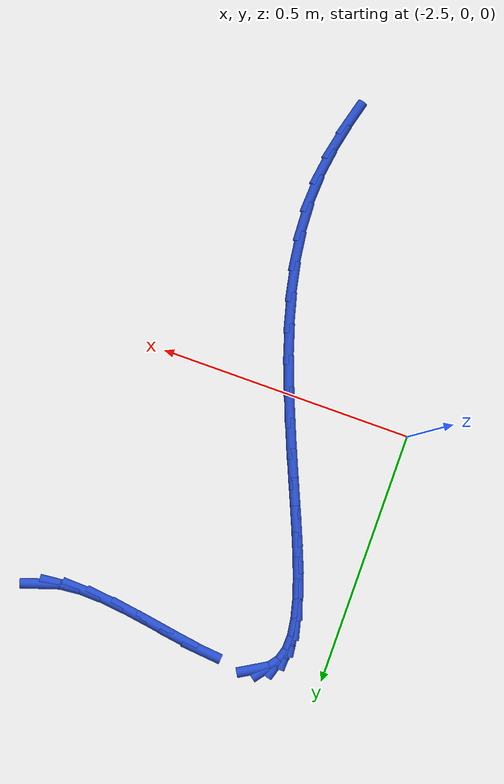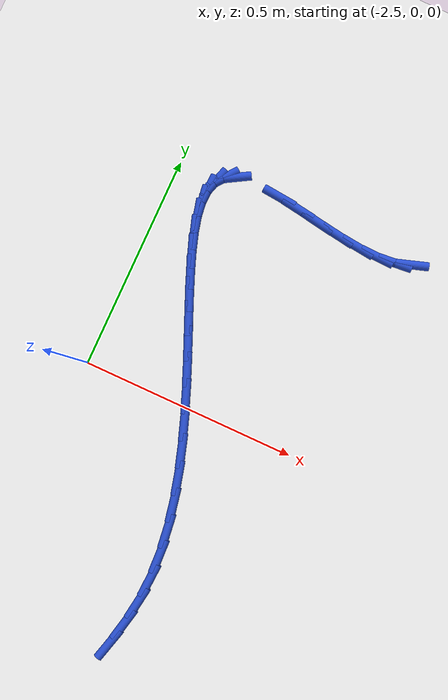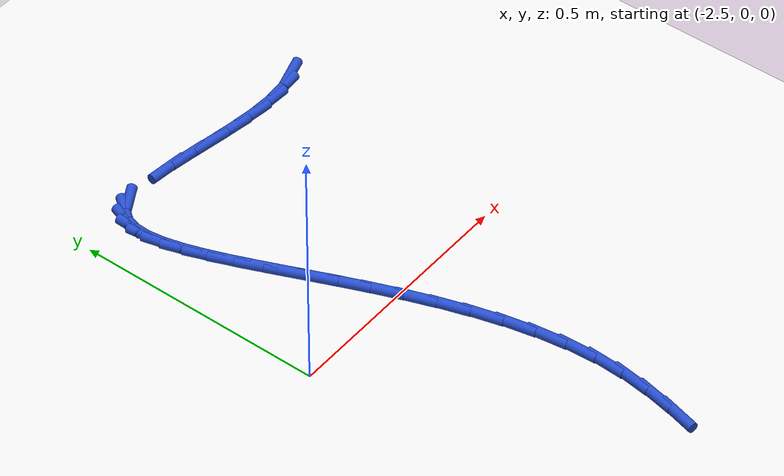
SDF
<sdf version="1.6">
 <world name="default">
  <model name="ground_plane">
   <static>1</static>
   <link name="link">
    <collision name="collision">
     <geometry><plane><normal>0 0 1</normal><size>100 100</size></plane></geometry>
     <surface><friction><ode><mu>100</mu><mu2>50</mu2></ode></friction></surface>
    </collision>
    <visual name="visual">
     <cast_shadows>0</cast_shadows>
     <geometry><plane><normal>0 0 1</normal><size>100 100</size></plane></geometry>
     <material>
      <script><uri>file://media/materials/scripts/gazebo.material</uri><name>Gazebo/WhiteGlow</name></script>
     </material>
    </visual>
   </link>
  </model>
  <model name="line">
   <link name="link_78">
    <pose>-1.9295693842121229 0.5047323110398326 0.01 0 1.57 0.31707817423236845</pose>
    <collision name="collision">
     <geometry><cylinder><radius>0.01</radius><length>0.08</length></cylinder></geometry>
    </collision>
    <visual name="visual">
     <material>
      <script><name>Gazebo/Blue</name><uri>file://media/materials/scripts/gazebo.material</uri></script>
     </material>
     <geometry><cylinder><radius>0.01</radius><length>0.08</length></cylinder></geometry>
    </visual>
   </link>
   <link name="link_79">
    <pose>-1.9646644216286684 0.4932158802956705 0.01 0 1.57 0.09384033132209492</pose>
    <collision name="collision">
     <geometry><cylinder><radius>0.01</radius><length>0.08</length></cylinder></geometry>
    </collision>
    <visual name="visual">
     <material>
      <script><name>Gazebo/Blue</name><uri>file://media/materials/scripts/gazebo.material</uri></script>
     </material>
     <geometry><cylinder><radius>0.01</radius><length>0.08</length></cylinder></geometry>
    </visual>
   </link>
   <link name="link_80">
    <pose>-2.0074501035096977 0.4891890306305653 0.01 0 1.57 -0.035440228475961795</pose>
    <collision name="collision">
     <geometry><cylinder><radius>0.01</radius><length>0.08</length></cylinder></geometry>
    </collision>
    <visual name="visual">
     <material>
      <script><name>Gazebo/Blue</name><uri>file://media/materials/scripts/gazebo.material</uri></script>
     </material>
     <geometry><cylinder><radius>0.01</radius><length>0.08</length></cylinder></geometry>
    </visual>
   </link>
   <link name="link_81">
    <pose>-2.0558226578307153 0.49090408310870315 0.01 0 1.57 -0.10965772234672923</pose>
    <collision name="collision">
     <geometry><cylinder><radius>0.01</radius><length>0.08</length></cylinder></geometry>
    </collision>
    <visual name="visual">
     <material>
      <script><name>Gazebo/Blue</name><uri>file://media/materials/scripts/gazebo.material</uri></script>
     </material>
     <geometry><cylinder><radius>0.01</radius><length>0.08</length></cylinder></geometry>
    </visual>
   </link>
   <link name="link_82">
    <pose>-2.1076783125672223 0.49661335879427004 0.01 0 1.57 -0.1483492825743426</pose>
    <collision name="collision">
     <geometry><cylinder><radius>0.01</radius><length>0.08</length></cylinder></geometry>
    </collision>
    <visual name="visual">
     <material>
      <script><name>Gazebo/Blue</name><uri>file://media/materials/scripts/gazebo.material</uri></script>
     </material>
     <geometry><cylinder><radius>0.01</radius><length>0.08</length></cylinder></geometry>
    </visual>
   </link>
   <link name="link_83">
    <pose>-2.1609132956947215 0.5045691787514519 0.01 0 1.57 -0.15963921540732678</pose>
    <collision name="collision">
     <geometry><cylinder><radius>0.01</radius><length>0.08</length></cylinder></geometry>
    </collision>
    <visual name="visual">
     <material>
      <script><name>Gazebo/Blue</name><uri>file://media/materials/scripts/gazebo.material</uri></script>
     </material>
     <geometry><cylinder><radius>0.01</radius><length>0.08</length></cylinder></geometry>
    </visual>
   </link>
   <link name="link_84">
    <pose>-2.2134238351887157 0.5130238640444347 0.01 0 1.57 -0.14403456175396848</pose>
    <collision name="collision">
     <geometry><cylinder><radius>0.01</radius><length>0.08</length></cylinder></geometry>
    </collision>
    <visual name="visual">
     <material>
      <script><name>Gazebo/Blue</name><uri>file://media/materials/scripts/gazebo.material</uri></script>
     </material>
     <geometry><cylinder><radius>0.01</radius><length>0.08</length></cylinder></geometry>
    </visual>
   </link>
   <link name="link_85">
    <pose>-2.2631061590247077 0.5202297357374044 0.01 0 1.57 -0.09378767169003357</pose>
    <collision name="collision">
     <geometry><cylinder><radius>0.01</radius><length>0.08</length></cylinder></geometry>
    </collision>
    <visual name="visual">
     <material>
      <script><name>Gazebo/Blue</name><uri>file://media/materials/scripts/gazebo.material</uri></script>
     </material>
     <geometry><cylinder><radius>0.01</radius><length>0.08</length></cylinder></geometry>
    </visual>
   </link>
   <link name="link_88">
    <pose>-2.3748055053307695 0.5173733212341527 0.01 0 1.57 0.5313476774846402</pose>
    <collision name="collision">
     <geometry><cylinder><radius>0.01</radius><length>0.08</length></cylinder></geometry>
    </collision>
    <visual name="visual">
     <material>
      <script><name>Gazebo/Blue</name><uri>file://media/materials/scripts/gazebo.material</uri></script>
     </material>
     <geometry><cylinder><radius>0.01</radius><length>0.08</length></cylinder></geometry>
    </visual>
   </link>
   <link name="link_89">
    <pose>-2.395929856911636 0.5049579318979447 0.01 0 1.57 0.9188520601062867</pose>
    <collision name="collision">
     <geometry><cylinder><radius>0.01</radius><length>0.08</length></cylinder></geometry>
    </collision>
    <visual name="visual">
     <material>
      <script><name>Gazebo/Blue</name><uri>file://media/materials/scripts/gazebo.material</uri></script>
     </material>
     <geometry><cylinder><radius>0.01</radius><length>0.08</length></cylinder></geometry>
    </visual>
   </link>
   <link name="link_90">
    <pose>-2.409630705870415 0.48700789262246885 0.01 0 1.57 1.2784528507960253</pose>
    <collision name="collision">
     <geometry><cylinder><radius>0.01</radius><length>0.08</length></cylinder></geometry>
    </collision>
    <visual name="visual">
     <material>
      <script><name>Gazebo/Blue</name><uri>file://media/materials/scripts/gazebo.material</uri></script>
     </material>
     <geometry><cylinder><radius>0.01</radius><length>0.08</length></cylinder></geometry>
    </visual>
   </link>
   <link name="link_91">
    <pose>-2.4165937550358154 0.4638722824909661 0.01 0 1.57 1.538241377419012</pose>
    <collision name="collision">
     <geometry><cylinder><radius>0.01</radius><length>0.08</length></cylinder></geometry>
    </collision>
    <visual name="visual">
     <material>
      <script><name>Gazebo/Blue</name><uri>file://media/materials/scripts/gazebo.material</uri></script>
     </material>
     <geometry><cylinder><radius>0.01</radius><length>0.08</length></cylinder></geometry>
    </visual>
   </link>
   <link name="link_92">
    <pose>-2.417504707236543 0.43590018058667845 0.01 0 1.57 -1.4343872381126828</pose>
    <collision name="collision">
     <geometry><cylinder><radius>0.01</radius><length>0.08</length></cylinder></geometry>
    </collision>
    <visual name="visual">
     <material>
      <script><name>Gazebo/Blue</name><uri>file://media/materials/scripts/gazebo.material</uri></script>
     </material>
     <geometry><cylinder><radius>0.01</radius><length>0.08</length></cylinder></geometry>
    </visual>
   </link>
   <link name="link_93">
    <pose>-2.4130492653013094 0.40344066599284806 0.01 0 1.57 -1.3261604661894888</pose>
    <collision name="collision">
     <geometry><cylinder><radius>0.01</radius><length>0.08</length></cylinder></geometry>
    </collision>
    <visual name="visual">
     <material>
      <script><name>Gazebo/Blue</name><uri>file://media/materials/scripts/gazebo.material</uri></script>
     </material>
     <geometry><cylinder><radius>0.01</radius><length>0.08</length></cylinder></geometry>
    </visual>
   </link>
   <link name="link_94">
    <pose>-2.403913132058819 0.3668428177927155 0.01 0 1.57 -1.2564454405957022</pose>
    <collision name="collision">
     <geometry><cylinder><radius>0.01</radius><length>0.08</length></cylinder></geometry>
    </collision>
    <visual name="visual">
     <material>
      <script><name>Gazebo/Blue</name><uri>file://media/materials/scripts/gazebo.material</uri></script>
     </material>
     <geometry><cylinder><radius>0.01</radius><length>0.08</length></cylinder></geometry>
    </visual>
   </link>
   <link name="link_95">
    <pose>-2.3907820103377824 0.326455715069523 0.01 0 1.57 -1.2119220796501142</pose>
    <collision name="collision">
     <geometry><cylinder><radius>0.01</radius><length>0.08</length></cylinder></geometry>
    </collision>
    <visual name="visual">
     <material>
      <script><name>Gazebo/Blue</name><uri>file://media/materials/scripts/gazebo.material</uri></script>
     </material>
     <geometry><cylinder><radius>0.01</radius><length>0.08</length></cylinder></geometry>
    </visual>
   </link>
   <link name="link_96">
    <pose>-2.374341602966905 0.2826284369065119 0.01 0 1.57 -1.1848514482988388</pose>
    <collision name="collision">
     <geometry><cylinder><radius>0.01</radius><length>0.08</length></cylinder></geometry>
    </collision>
    <visual name="visual">
     <material>
      <script><name>Gazebo/Blue</name><uri>file://media/materials/scripts/gazebo.material</uri></script>
     </material>
     <geometry><cylinder><radius>0.01</radius><length>0.08</length></cylinder></geometry>
    </visual>
   </link>
   <link name="link_97">
    <pose>-2.3552776127748967 0.23571006238692402 0.01 0 1.57 -1.170697363516616</pose>
    <collision name="collision">
     <geometry><cylinder><radius>0.01</radius><length>0.08</length></cylinder></geometry>
    </collision>
    <visual name="visual">
     <material>
      <script><name>Gazebo/Blue</name><uri>file://media/materials/scripts/gazebo.material</uri></script>
     </material>
     <geometry><cylinder><radius>0.01</radius><length>0.08</length></cylinder></geometry>
    </visual>
   </link>
   <link name="link_98">
    <pose>-2.334275742590465 0.1860496705940021 0.01 0 1.57 -1.1667897806602388</pose>
    <collision name="collision">
     <geometry><cylinder><radius>0.01</radius><length>0.08</length></cylinder></geometry>
    </collision>
    <visual name="visual">
     <material>
      <script><name>Gazebo/Blue</name><uri>file://media/materials/scripts/gazebo.material</uri></script>
     </material>
     <geometry><cylinder><radius>0.01</radius><length>0.08</length></cylinder></geometry>
    </visual>
   </link>
   <link name="link_99">
    <pose>-2.3120216952423167 0.13399634061098545 0.01 0 1.57 -1.1716027047297568</pose>
    <collision name="collision">
     <geometry><cylinder><radius>0.01</radius><length>0.08</length></cylinder></geometry>
    </collision>
    <visual name="visual">
     <material>
      <script><name>Gazebo/Blue</name><uri>file://media/materials/scripts/gazebo.material</uri></script>
     </material>
     <geometry><cylinder><radius>0.01</radius><length>0.08</length></cylinder></geometry>
    </visual>
   </link>
   <link name="link_100">
    <pose>-2.2892011735591615 0.07989915152111694 0.01 0 1.57 -1.184362921709073</pose>
    <collision name="collision">
     <geometry><cylinder><radius>0.01</radius><length>0.08</length></cylinder></geometry>
    </collision>
    <visual name="visual">
     <material>
      <script><name>Gazebo/Blue</name><uri>file://media/materials/scripts/gazebo.material</uri></script>
     </material>
     <geometry><cylinder><radius>0.01</radius><length>0.08</length></cylinder></geometry>
    </visual>
   </link>
   <link name="link_101">
    <pose>-2.266499880369706 0.024107182407638122 0.01 0 1.57 -1.204837652070372</pose>
    <collision name="collision">
     <geometry><cylinder><radius>0.01</radius><length>0.08</length></cylinder></geometry>
    </collision>
    <visual name="visual">
     <material>
      <script><name>Gazebo/Blue</name><uri>file://media/materials/scripts/gazebo.material</uri></script>
     </material>
     <geometry><cylinder><radius>0.01</radius><length>0.08</length></cylinder></geometry>
    </visual>
   </link>
   <link name="link_102">
    <pose>-2.2446035185026583 -0.033030487646209514 0.01 0 1.57 -1.2332218618354946</pose>
    <collision name="collision">
     <geometry><cylinder><radius>0.01</radius><length>0.08</length></cylinder></geometry>
    </collision>
    <visual name="visual">
     <material>
      <script><name>Gazebo/Blue</name><uri>file://media/materials/scripts/gazebo.material</uri></script>
     </material>
     <geometry><cylinder><radius>0.01</radius><length>0.08</length></cylinder></geometry>
    </visual>
   </link>
   <link name="link_103">
    <pose>-2.2241977907867265 -0.09116477955718419 0.01 0 1.57 -1.2700816754901187</pose>
    <collision name="collision">
     <geometry><cylinder><radius>0.01</radius><length>0.08</length></cylinder></geometry>
    </collision>
    <visual name="visual">
     <material>
      <script><name>Gazebo/Blue</name><uri>file://media/materials/scripts/gazebo.material</uri></script>
     </material>
     <geometry><cylinder><radius>0.01</radius><length>0.08</length></cylinder></geometry>
    </visual>
   </link>
   <link name="link_104">
    <pose>-2.2059684000506183 -0.1499466142420444 0.01 0 1.57 -1.3163256401507324</pose>
    <collision name="collision">
     <geometry><cylinder><radius>0.01</radius><length>0.08</length></cylinder></geometry>
    </collision>
    <visual name="visual">
     <material>
      <script><name>Gazebo/Blue</name><uri>file://media/materials/scripts/gazebo.material</uri></script>
     </material>
     <geometry><cylinder><radius>0.01</radius><length>0.08</length></cylinder></geometry>
    </visual>
   </link>
   <link name="link_105">
    <pose>-2.190601049123042 -0.20902691261754705 0.01 0 1.57 -1.3731780777315539</pose>
    <collision name="collision">
     <geometry><cylinder><radius>0.01</radius><length>0.08</length></cylinder></geometry>
    </collision>
    <visual name="visual">
     <material>
      <script><name>Gazebo/Blue</name><uri>file://media/materials/scripts/gazebo.material</uri></script>
     </material>
     <geometry><cylinder><radius>0.01</radius><length>0.08</length></cylinder></geometry>
    </visual>
   </link>
   <link name="link_106">
    <pose>-2.1787814408327058 -0.2680565956004533 0.01 0 1.57 -1.4421207518187036</pose>
    <collision name="collision">
     <geometry><cylinder><radius>0.01</radius><length>0.08</length></cylinder></geometry>
    </collision>
    <visual name="visual">
     <material>
      <script><name>Gazebo/Blue</name><uri>file://media/materials/scripts/gazebo.material</uri></script>
     </material>
     <geometry><cylinder><radius>0.01</radius><length>0.08</length></cylinder></geometry>
    </visual>
   </link>
   <link name="link_107">
    <pose>-2.171195278008317 -0.3266865841075203 0.01 0 1.57 -1.5247515182189642</pose>
    <collision name="collision">
     <geometry><cylinder><radius>0.01</radius><length>0.08</length></cylinder></geometry>
    </collision>
    <visual name="visual">
     <material>
      <script><name>Gazebo/Blue</name><uri>file://media/materials/scripts/gazebo.material</uri></script>
     </material>
     <geometry><cylinder><radius>0.01</radius><length>0.08</length></cylinder></geometry>
    </visual>
   </link>
   <link name="link_108">
    <pose>-2.1685282634785827 -0.384567799055506 0.01 0 1.57 1.5199772304468833</pose>
    <collision name="collision">
     <geometry><cylinder><radius>0.01</radius><length>0.08</length></cylinder></geometry>
    </collision>
    <visual name="visual">
     <material>
      <script><name>Gazebo/Blue</name><uri>file://media/materials/scripts/gazebo.material</uri></script>
     </material>
     <geometry><cylinder><radius>0.01</radius><length>0.08</length></cylinder></geometry>
    </visual>
   </link>
   <link name="link_109">
    <pose>-2.171416409487654 -0.44135077038637255 0.01 0 1.57 1.4271806141903636</pose>
    <collision name="collision">
     <geometry><cylinder><radius>0.01</radius><length>0.08</length></cylinder></geometry>
    </collision>
    <visual name="visual">
     <material>
      <script><name>Gazebo/Blue</name><uri>file://media/materials/scripts/gazebo.material</uri></script>
     </material>
     <geometry><cylinder><radius>0.01</radius><length>0.08</length></cylinder></geometry>
    </visual>
   </link>
   <link name="link_110">
    <pose>-2.179417286389395 -0.4966775426599438 0.01 0 1.57 1.3568074863925668</pose>
    <collision name="collision">
     <geometry><cylinder><radius>0.01</radius><length>0.08</length></cylinder></geometry>
    </collision>
    <visual name="visual">
     <material>
      <script><name>Gazebo/Blue</name><uri>file://media/materials/scripts/gazebo.material</uri></script>
     </material>
     <geometry><cylinder><radius>0.01</radius><length>0.08</length></cylinder></geometry>
    </visual>
   </link>
   <link name="link_111">
    <pose>-2.1910446532305405 -0.5501819475337991 0.01 0 1.57 1.3094533938244448</pose>
    <collision name="collision">
     <geometry><cylinder><radius>0.01</radius><length>0.08</length></cylinder></geometry>
    </collision>
    <visual name="visual">
     <material>
      <script><name>Gazebo/Blue</name><uri>file://media/materials/scripts/gazebo.material</uri></script>
     </material>
     <geometry><cylinder><radius>0.01</radius><length>0.08</length></cylinder></geometry>
    </visual>
   </link>
  </model>
 </world>
</sdf>
